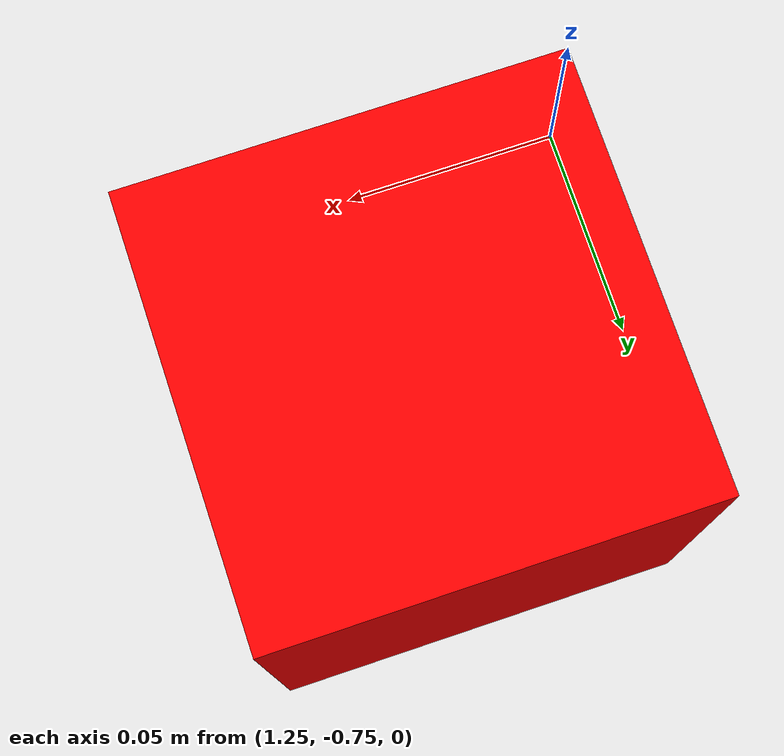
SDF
<?xml version='1.0'?>
<sdf version='1.6'>
<model name='red_cube_1'>
    <link name='red_cube_1_link'>
        <pose frame=''>0.65 -0.35 -0 0 -0 0</pose>
        <inertial>
            <mass>2</mass>
            <inertia>
            <ixx>0.0166667</ixx>
            <ixy>0</ixy>
            <ixz>0</ixz>
            <iyy>0.0166667</iyy>
            <iyz>0</iyz>
            <izz>0.0166667</izz>
            </inertia>
            <pose frame=''>0.65 -0.35 -0 0 -0 0</pose>
        </inertial>
        <collision name='collision'>
            <pose frame=''>0.65 -0.35 -0 0 -0 0</pose>
            <geometry>
            <box>
                <size>0.1 0.1 0.1</size>
            </box>
            </geometry>
            <max_contacts>10</max_contacts>
            <surface>
            <contact>
                <ode/>
            </contact>
            <bounce/>
            <friction>
                <torsional>
                <ode/>
                </torsional>
                <ode/>
            </friction>
            </surface>
        </collision>
        <visual name='visual'>
            <pose frame=''>0.65 -0.35 -0 0 -0 0</pose>
            <geometry>
            <box>
                <size>0.1 0.1 0.1</size>
            </box>
            </geometry>
            <material>
                <lighting>1</lighting>
                <ambient>1 0 0 1</ambient>
                <diffuse>1 0 0 1</diffuse>
                <specular>0.1 0.1 0.1 1 1</specular>
                <emissive>1 0 0 1</emissive>
            </material>
        </visual>
        <self_collide>0</self_collide>
        <kinematic>0</kinematic>
        <gravity>1</gravity>
        <enable_wind>0</enable_wind>
    </link>
</model>
</sdf>
